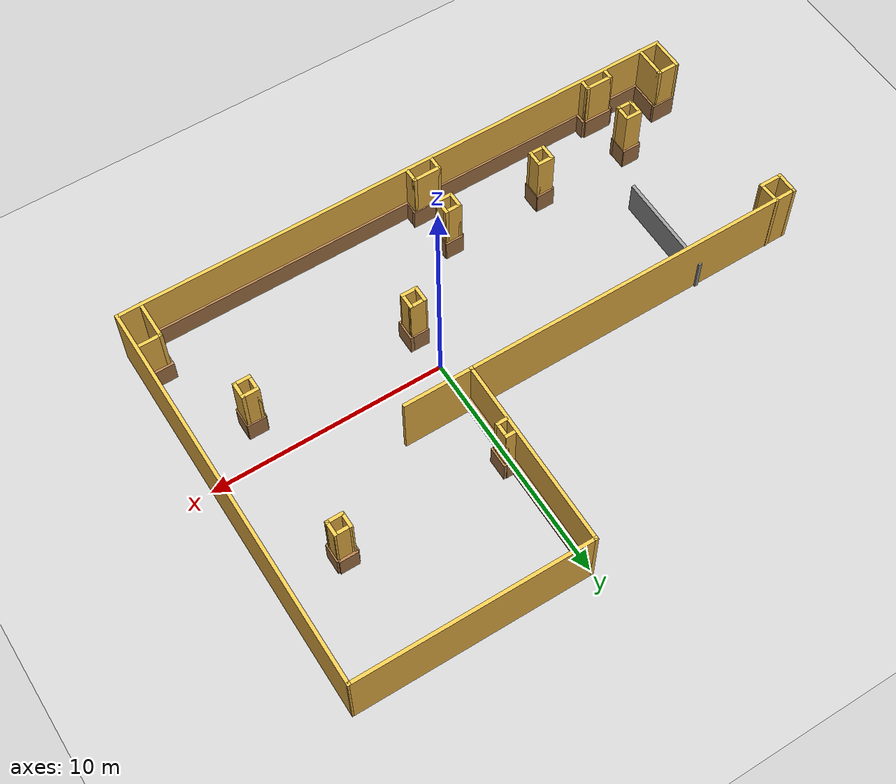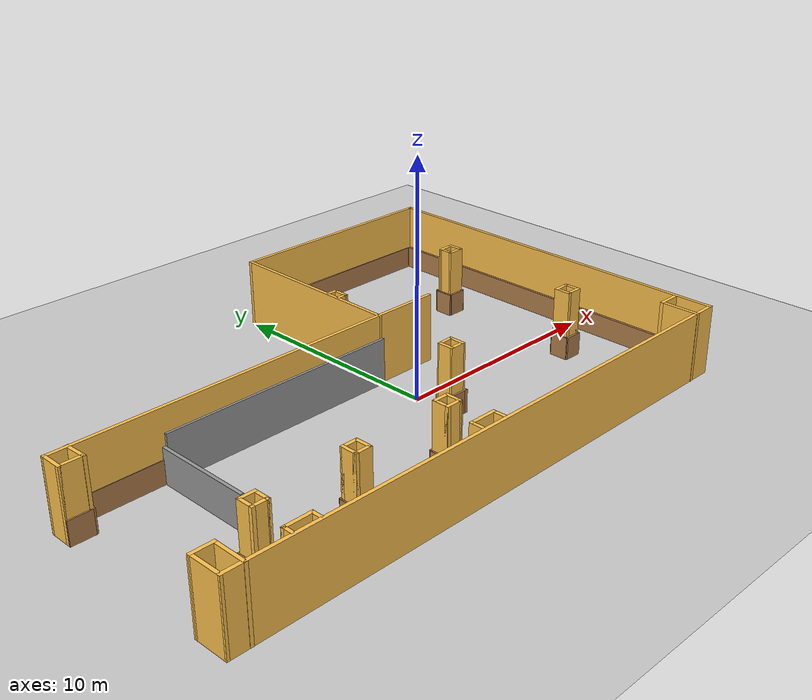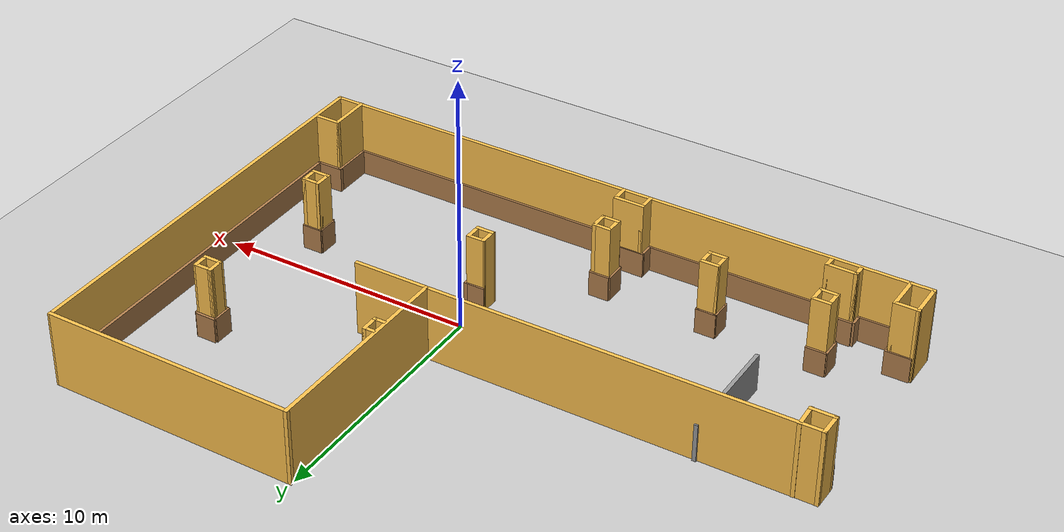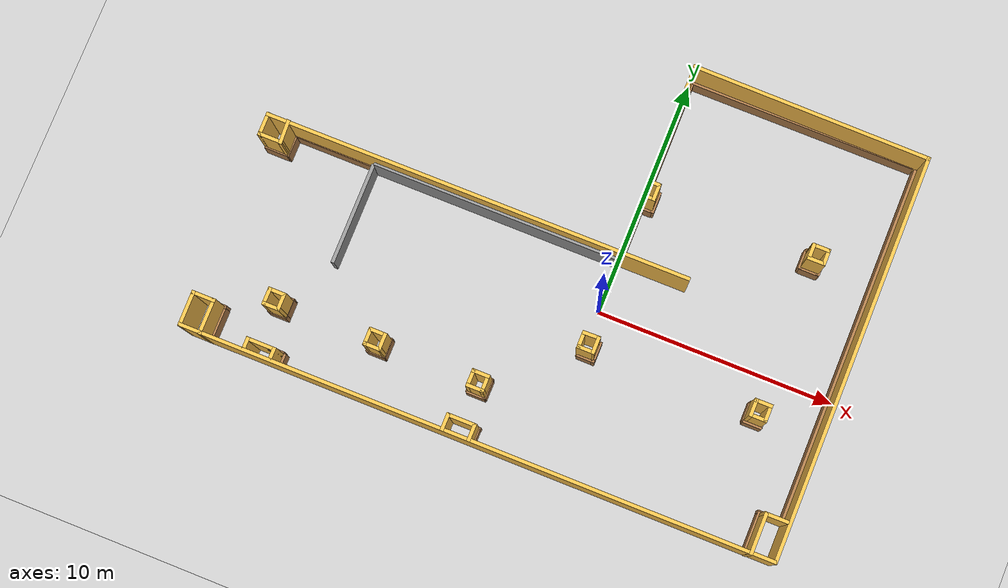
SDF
<sdf version="1.4">
 <world name="default">
  <model name="ground_plane">
   <static>1</static>
   <link name="link">
    <collision name="collision">
     <geometry><plane><normal>0 0 1</normal><size>100 100</size></plane></geometry>
     <surface><friction><ode><mu>100</mu><mu2>50</mu2></ode></friction></surface>
    </collision>
    <visual name="visual">
     <cast_shadows>0</cast_shadows>
     <geometry><plane><normal>0 0 1</normal><size>100 100</size></plane></geometry>
     <material>
      <script><uri>file://media/materials/scripts/gazebo.material</uri><name>Gazebo/Grey</name></script>
     </material>
    </visual>
   </link>
  </model>
  <model name="costa-gv">
   <pose>-2.49048 1.64389 0 0 -0 0</pose>
   <link name="Wall_10">
    <collision name="Wall_10_Collision">
     <geometry><box><size>15 0.15 3</size></box></geometry>
     <pose>0 0 1.5 0 -0 0</pose>
    </collision>
    <visual name="Wall_10_Visual">
     <pose>0 0 1.5 0 -0 0</pose>
     <geometry><box><size>15 0.15 3</size></box></geometry>
     <material>
      <script><uri>file://media/materials/scripts/gazebo.material</uri><name>Gazebo/Grey</name></script>
      <ambient>1 0.764706 0.305882 1</ambient>
     </material>
    </visual>
    <pose>-4.93585 0.471568 0 0 -0 -3.14024</pose>
   </link>
   <link name="Wall_103">
    <collision name="Wall_103_Collision">
     <geometry><box><size>3.4811 0.15 1</size></box></geometry>
     <pose>0 0 0.5 0 -0 0</pose>
    </collision>
    <visual name="Wall_103_Visual">
     <pose>0 0 0.5 0 -0 0</pose>
     <geometry><box><size>3.4811 0.15 1</size></box></geometry>
     <material>
      <script><uri>file://media/materials/scripts/gazebo.material</uri><name>Gazebo/Wood</name></script>
      <ambient>1 1 1 1</ambient>
     </material>
    </visual>
    <pose>-9.76907 0.427453 0 0 -0 3.14152</pose>
   </link>
   <link name="Wall_108">
    <collision name="Wall_108_Collision">
     <geometry><box><size>1 0.15 1</size></box></geometry>
     <pose>0 0 0.5 0 -0 0</pose>
    </collision>
    <visual name="Wall_108_Visual">
     <pose>0 0 0.5 0 -0 0</pose>
     <geometry><box><size>1 0.15 1</size></box></geometry>
     <material>
      <script><uri>file://media/materials/scripts/gazebo.material</uri><name>Gazebo/Wood</name></script>
      <ambient>1 1 1 1</ambient>
     </material>
    </visual>
    <pose>-11.4344 -0.007502 0 0 -0 -1.5708</pose>
   </link>
   <link name="Wall_117">
    <collision name="Wall_117_Collision">
     <geometry><box><size>1 0.15 1</size></box></geometry>
     <pose>0 0 0.5 0 -0 0</pose>
    </collision>
    <visual name="Wall_117_Visual">
     <pose>0 0 0.5 0 -0 0</pose>
     <geometry><box><size>1 0.15 1</size></box></geometry>
     <material>
      <script><uri>file://media/materials/scripts/gazebo.material</uri><name>Gazebo/Wood</name></script>
      <ambient>1 1 1 1</ambient>
     </material>
    </visual>
    <pose>-11.9319 -0.439362 0 0 -0 0</pose>
   </link>
   <link name="Wall_122">
    <collision name="Wall_122_Collision">
     <geometry><box><size>1 0.15 1</size></box></geometry>
     <pose>0 0 0.5 0 -0 0</pose>
    </collision>
    <visual name="Wall_122_Visual">
     <pose>0 0 0.5 0 -0 0</pose>
     <geometry><box><size>1 0.15 1</size></box></geometry>
     <material>
      <script><uri>file://media/materials/scripts/gazebo.material</uri><name>Gazebo/Wood</name></script>
      <ambient>1 1 1 1</ambient>
     </material>
    </visual>
    <pose>-11.8018 -7.05636 0 0 -0 0</pose>
   </link>
   <link name="Wall_124">
    <collision name="Wall_124_Collision">
     <geometry><box><size>1.25 0.15 1</size></box></geometry>
     <pose>0 0 0.5 0 -0 0</pose>
    </collision>
    <visual name="Wall_124_Visual">
     <pose>0 0 0.5 0 -0 0</pose>
     <geometry><box><size>1.25 0.15 1</size></box></geometry>
     <material>
      <script><uri>file://media/materials/scripts/gazebo.material</uri><name>Gazebo/Wood</name></script>
      <ambient>1 1 1 1</ambient>
     </material>
    </visual>
    <pose>-11.3608 -7.72636 0 0 -0 -1.5708</pose>
   </link>
   <link name="Wall_126">
    <collision name="Wall_126_Collision">
     <geometry><box><size>1.75 0.15 1</size></box></geometry>
     <pose>0 0 0.5 0 -0 0</pose>
    </collision>
    <visual name="Wall_126_Visual">
     <pose>0 0 0.5 0 -0 0</pose>
     <geometry><box><size>1.75 0.15 1</size></box></geometry>
     <material>
      <script><uri>file://media/materials/scripts/gazebo.material</uri><name>Gazebo/Wood</name></script>
      <ambient>1 1 1 1</ambient>
     </material>
    </visual>
    <pose>-10.5508 -8.37536 0 0 -0 0</pose>
   </link>
   <link name="Wall_128">
    <collision name="Wall_128_Collision">
     <geometry><box><size>1.25 0.15 1</size></box></geometry>
     <pose>0 0 0.5 0 -0 0</pose>
    </collision>
    <visual name="Wall_128_Visual">
     <pose>0 0 0.5 0 -0 0</pose>
     <geometry><box><size>1.25 0.15 1</size></box></geometry>
     <material>
      <script><uri>file://media/materials/scripts/gazebo.material</uri><name>Gazebo/Wood</name></script>
      <ambient>1 1 1 1</ambient>
     </material>
    </visual>
    <pose>-9.08885 -7.91136 0 0 -0 0</pose>
   </link>
   <link name="Wall_130">
    <collision name="Wall_130_Collision">
     <geometry><box><size>0.5 0.15 1</size></box></geometry>
     <pose>0 0 0.5 0 -0 0</pose>
    </collision>
    <visual name="Wall_130_Visual">
     <pose>0 0 0.5 0 -0 0</pose>
     <geometry><box><size>0.5 0.15 1</size></box></geometry>
     <material>
      <script><uri>file://media/materials/scripts/gazebo.material</uri><name>Gazebo/Wood</name></script>
      <ambient>1 1 1 1</ambient>
     </material>
    </visual>
    <pose>-8.42085 -8.15736 0 0 -0 -1.5708</pose>
   </link>
   <link name="Wall_132">
    <collision name="Wall_132_Collision">
     <geometry><box><size>0.5 0.15 1</size></box></geometry>
     <pose>0 0 0.5 0 -0 0</pose>
    </collision>
    <visual name="Wall_132_Visual">
     <pose>0 0 0.5 0 -0 0</pose>
     <geometry><box><size>0.5 0.15 1</size></box></geometry>
     <material>
      <script><uri>file://media/materials/scripts/gazebo.material</uri><name>Gazebo/Wood</name></script>
      <ambient>1 1 1 1</ambient>
     </material>
    </visual>
    <pose>-9.72985 -8.13736 0 0 -0 -1.5708</pose>
   </link>
   <link name="Wall_134">
    <collision name="Wall_134_Collision">
     <geometry><box><size>7 0.15 1</size></box></geometry>
     <pose>0 0 0.5 0 -0 0</pose>
    </collision>
    <visual name="Wall_134_Visual">
     <pose>0 0 0.5 0 -0 0</pose>
     <geometry><box><size>7 0.15 1</size></box></geometry>
     <material>
      <script><uri>file://media/materials/scripts/gazebo.material</uri><name>Gazebo/Wood</name></script>
      <ambient>1 1 1 1</ambient>
     </material>
    </visual>
    <pose>-4.89485 -8.37536 0 0 -0 0</pose>
   </link>
   <link name="Wall_137">
    <collision name="Wall_137_Collision">
     <geometry><box><size>0.5 0.15 1</size></box></geometry>
     <pose>0 0 0.5 0 -0 0</pose>
    </collision>
    <visual name="Wall_137_Visual">
     <pose>0 0 0.5 0 -0 0</pose>
     <geometry><box><size>0.5 0.15 1</size></box></geometry>
     <material>
      <script><uri>file://media/materials/scripts/gazebo.material</uri><name>Gazebo/Wood</name></script>
      <ambient>1 1 1 1</ambient>
     </material>
    </visual>
    <pose>-1.42185 -8.07636 0 0 -0 -1.5708</pose>
   </link>
   <link name="Wall_141">
    <collision name="Wall_141_Collision">
     <geometry><box><size>0.8 0.15 1</size></box></geometry>
     <pose>0 0 0.5 0 -0 0</pose>
    </collision>
    <visual name="Wall_141_Visual">
     <pose>0 0 0.5 0 -0 0</pose>
     <geometry><box><size>0.8 0.15 1</size></box></geometry>
     <material>
      <script><uri>file://media/materials/scripts/gazebo.material</uri><name>Gazebo/Wood</name></script>
      <ambient>1 1 1 1</ambient>
     </material>
    </visual>
    <pose>-9.29371 -6.54229 0 0 -0 0</pose>
   </link>
   <link name="Wall_146">
    <collision name="Wall_146_Collision">
     <geometry><box><size>0.8 0.15 1</size></box></geometry>
     <pose>0 0 0.5 0 -0 0</pose>
    </collision>
    <visual name="Wall_146_Visual">
     <pose>0 0 0.5 0 -0 0</pose>
     <geometry><box><size>0.8 0.15 1</size></box></geometry>
     <material>
      <script><uri>file://media/materials/scripts/gazebo.material</uri><name>Gazebo/Wood</name></script>
      <ambient>1 1 1 1</ambient>
     </material>
    </visual>
    <pose>-9.30375 -5.81726 0 0 -0 0</pose>
   </link>
   <link name="Wall_148">
    <collision name="Wall_148_Collision">
     <geometry><box><size>0.8 0.15 1</size></box></geometry>
     <pose>0 0 0.5 0 -0 0</pose>
    </collision>
    <visual name="Wall_148_Visual">
     <pose>0 0 0.5 0 -0 0</pose>
     <geometry><box><size>0.8 0.15 1</size></box></geometry>
     <material>
      <script><uri>file://media/materials/scripts/gazebo.material</uri><name>Gazebo/Wood</name></script>
      <ambient>1 1 1 1</ambient>
     </material>
    </visual>
    <pose>-8.9742 -6.19261 0 0 -0 -1.5708</pose>
   </link>
   <link name="Wall_150">
    <collision name="Wall_150_Collision">
     <geometry><box><size>0.8 0.15 1</size></box></geometry>
     <pose>0 0 0.5 0 -0 0</pose>
    </collision>
    <visual name="Wall_150_Visual">
     <pose>0 0 0.5 0 -0 0</pose>
     <geometry><box><size>0.8 0.15 1</size></box></geometry>
     <material>
      <script><uri>file://media/materials/scripts/gazebo.material</uri><name>Gazebo/Wood</name></script>
      <ambient>1 1 1 1</ambient>
     </material>
    </visual>
    <pose>-9.66903 -6.18254 0 0 -0 -1.5708</pose>
   </link>
   <link name="Wall_152">
    <collision name="Wall_152_Collision">
     <geometry><box><size>0.8 0.15 1</size></box></geometry>
     <pose>0 0 0.5 0 -0 0</pose>
    </collision>
    <visual name="Wall_152_Visual">
     <pose>0 0 0.5 0 -0 0</pose>
     <geometry><box><size>0.8 0.15 1</size></box></geometry>
     <material>
      <script><uri>file://media/materials/scripts/gazebo.material</uri><name>Gazebo/Wood</name></script>
      <ambient>1 1 1 1</ambient>
     </material>
    </visual>
    <pose>-5.07028 -6.54841 0 0 -0 0</pose>
   </link>
   <link name="Wall_154">
    <collision name="Wall_154_Collision">
     <geometry><box><size>0.8 0.15 1</size></box></geometry>
     <pose>0 0 0.5 0 -0 0</pose>
    </collision>
    <visual name="Wall_154_Visual">
     <pose>0 0 0.5 0 -0 0</pose>
     <geometry><box><size>0.8 0.15 1</size></box></geometry>
     <material>
      <script><uri>file://media/materials/scripts/gazebo.material</uri><name>Gazebo/Wood</name></script>
      <ambient>1 1 1 1</ambient>
     </material>
    </visual>
    <pose>-5.07028 -5.82927 0 0 -0 0</pose>
   </link>
   <link name="Wall_156">
    <collision name="Wall_156_Collision">
     <geometry><box><size>0.8 0.15 1</size></box></geometry>
     <pose>0 0 0.5 0 -0 0</pose>
    </collision>
    <visual name="Wall_156_Visual">
     <pose>0 0 0.5 0 -0 0</pose>
     <geometry><box><size>0.8 0.15 1</size></box></geometry>
     <material>
      <script><uri>file://media/materials/scripts/gazebo.material</uri><name>Gazebo/Wood</name></script>
      <ambient>1 1 1 1</ambient>
     </material>
    </visual>
    <pose>-4.7294 -6.19422 0 0 -0 -1.5708</pose>
   </link>
   <link name="Wall_158">
    <collision name="Wall_158_Collision">
     <geometry><box><size>0.8 0.15 1</size></box></geometry>
     <pose>0 0 0.5 0 -0 0</pose>
    </collision>
    <visual name="Wall_158_Visual">
     <pose>0 0 0.5 0 -0 0</pose>
     <geometry><box><size>0.8 0.15 1</size></box></geometry>
     <material>
      <script><uri>file://media/materials/scripts/gazebo.material</uri><name>Gazebo/Wood</name></script>
      <ambient>1 1 1 1</ambient>
     </material>
    </visual>
    <pose>-5.42191 -6.19422 0 0 -0 -1.5708</pose>
   </link>
   <link name="Wall_160">
    <collision name="Wall_160_Collision">
     <geometry><box><size>1.4 0.15 1</size></box></geometry>
     <pose>0 0 0.5 0 -0 0</pose>
    </collision>
    <visual name="Wall_160_Visual">
     <pose>0 0 0.5 0 -0 0</pose>
     <geometry><box><size>1.4 0.15 1</size></box></geometry>
     <material>
      <script><uri>file://media/materials/scripts/gazebo.material</uri><name>Gazebo/Wood</name></script>
      <ambient>1 1 1 1</ambient>
     </material>
    </visual>
    <pose>-0.788355 -7.81357 0 0 -0 0</pose>
   </link>
   <link name="Wall_162">
    <collision name="Wall_162_Collision">
     <geometry><box><size>0.7 0.15 1</size></box></geometry>
     <pose>0 0 0.5 0 -0 0</pose>
    </collision>
    <visual name="Wall_162_Visual">
     <pose>0 0 0.5 0 -0 0</pose>
     <geometry><box><size>0.7 0.15 1</size></box></geometry>
     <material>
      <script><uri>file://media/materials/scripts/gazebo.material</uri><name>Gazebo/Wood</name></script>
      <ambient>1 1 1 1</ambient>
     </material>
    </visual>
    <pose>-0.174848 -8.16836 0 0 -0 -1.5708</pose>
   </link>
   <link name="Wall_167">
    <collision name="Wall_167_Collision">
     <geometry><box><size>0.8 0.15 1</size></box></geometry>
     <pose>0 0 0.5 0 -0 0</pose>
    </collision>
    <visual name="Wall_167_Visual">
     <pose>0 0 0.5 0 -0 0</pose>
     <geometry><box><size>0.8 0.15 1</size></box></geometry>
     <material>
      <script><uri>file://media/materials/scripts/gazebo.material</uri><name>Gazebo/Wood</name></script>
      <ambient>1 1 1 1</ambient>
     </material>
    </visual>
    <pose>-1.13366 -6.23417 0 0 -0 -1.5708</pose>
   </link>
   <link name="Wall_169">
    <collision name="Wall_169_Collision">
     <geometry><box><size>0.8 0.15 1</size></box></geometry>
     <pose>0 0 0.5 0 -0 0</pose>
    </collision>
    <visual name="Wall_169_Visual">
     <pose>0 0 0.5 0 -0 0</pose>
     <geometry><box><size>0.8 0.15 1</size></box></geometry>
     <material>
      <script><uri>file://media/materials/scripts/gazebo.material</uri><name>Gazebo/Wood</name></script>
      <ambient>1 1 1 1</ambient>
     </material>
    </visual>
    <pose>-0.414512 -6.23417 0 0 -0 -1.5708</pose>
   </link>
   <link name="Wall_171">
    <collision name="Wall_171_Collision">
     <geometry><box><size>0.8 0.15 1</size></box></geometry>
     <pose>0 0 0.5 0 -0 0</pose>
    </collision>
    <visual name="Wall_171_Visual">
     <pose>0 0 0.5 0 -0 0</pose>
     <geometry><box><size>0.8 0.15 1</size></box></geometry>
     <material>
      <script><uri>file://media/materials/scripts/gazebo.material</uri><name>Gazebo/Wood</name></script>
      <ambient>1 1 1 1</ambient>
     </material>
    </visual>
    <pose>-0.768707 -6.60168 0 0 -0 0</pose>
   </link>
   <link name="Wall_173">
    <collision name="Wall_173_Collision">
     <geometry><box><size>0.8 0.15 1</size></box></geometry>
     <pose>0 0 0.5 0 -0 0</pose>
    </collision>
    <visual name="Wall_173_Visual">
     <pose>0 0 0.5 0 -0 0</pose>
     <geometry><box><size>0.8 0.15 1</size></box></geometry>
     <material>
      <script><uri>file://media/materials/scripts/gazebo.material</uri><name>Gazebo/Wood</name></script>
      <ambient>1 1 1 1</ambient>
     </material>
    </visual>
    <pose>-0.75539 -5.84258 0 0 -0 0</pose>
   </link>
   <link name="Wall_175">
    <collision name="Wall_175_Collision">
     <geometry><box><size>11.5 0.15 1</size></box></geometry>
     <pose>0 0 0.5 0 -0 0</pose>
    </collision>
    <visual name="Wall_175_Visual">
     <pose>0 0 0.5 0 -0 0</pose>
     <geometry><box><size>11.5 0.15 1</size></box></geometry>
     <material>
      <script><uri>file://media/materials/scripts/gazebo.material</uri><name>Gazebo/Wood</name></script>
      <ambient>1 1 1 1</ambient>
     </material>
    </visual>
    <pose>5.58313 -8.36284 0 0 -0 0</pose>
   </link>
   <link name="Wall_177">
    <collision name="Wall_177_Collision">
     <geometry><box><size>1.6 0.15 1</size></box></geometry>
     <pose>0 0 0.5 0 -0 0</pose>
    </collision>
    <visual name="Wall_177_Visual">
     <pose>0 0 0.5 0 -0 0</pose>
     <geometry><box><size>1.6 0.15 1</size></box></geometry>
     <material>
      <script><uri>file://media/materials/scripts/gazebo.material</uri><name>Gazebo/Wood</name></script>
      <ambient>1 1 1 1</ambient>
     </material>
    </visual>
    <pose>11.2848 -7.54313 0 0 -0 -1.5708</pose>
   </link>
   <link name="Wall_179">
    <collision name="Wall_179_Collision">
     <geometry><box><size>1.15 0.15 1</size></box></geometry>
     <pose>0 0 0.5 0 -0 0</pose>
    </collision>
    <visual name="Wall_179_Visual">
     <pose>0 0 0.5 0 -0 0</pose>
     <geometry><box><size>1.15 0.15 1</size></box></geometry>
     <material>
      <script><uri>file://media/materials/scripts/gazebo.material</uri><name>Gazebo/Wood</name></script>
      <ambient>1 1 1 1</ambient>
     </material>
    </visual>
    <pose>11.7805 -6.77121 0 0 -0 3.14159</pose>
   </link>
   <link name="Wall_181">
    <collision name="Wall_181_Collision">
     <geometry><box><size>0.75 0.15 1</size></box></geometry>
     <pose>0 0 0.5 0 -0 0</pose>
    </collision>
    <visual name="Wall_181_Visual">
     <pose>0 0 0.5 0 -0 0</pose>
     <geometry><box><size>0.75 0.15 1</size></box></geometry>
     <material>
      <script><uri>file://media/materials/scripts/gazebo.material</uri><name>Gazebo/Wood</name></script>
      <ambient>1 1 1 1</ambient>
     </material>
    </visual>
    <pose>2.70847 -3.64523 0 0 -0 0</pose>
   </link>
   <link name="Wall_183">
    <collision name="Wall_183_Collision">
     <geometry><box><size>0.9 0.15 1</size></box></geometry>
     <pose>0 0 0.5 0 -0 0</pose>
    </collision>
    <visual name="Wall_183_Visual">
     <pose>0 0 0.5 0 -0 0</pose>
     <geometry><box><size>0.9 0.15 1</size></box></geometry>
     <material>
      <script><uri>file://media/materials/scripts/gazebo.material</uri><name>Gazebo/Wood</name></script>
      <ambient>1 1 1 1</ambient>
     </material>
    </visual>
    <pose>3.03515 -3.27436 0 0 -0 -1.5708</pose>
   </link>
   <link name="Wall_185">
    <collision name="Wall_185_Collision">
     <geometry><box><size>0.75 0.15 1</size></box></geometry>
     <pose>0 0 0.5 0 -0 0</pose>
    </collision>
    <visual name="Wall_185_Visual">
     <pose>0 0 0.5 0 -0 0</pose>
     <geometry><box><size>0.75 0.15 1</size></box></geometry>
     <material>
      <script><uri>file://media/materials/scripts/gazebo.material</uri><name>Gazebo/Wood</name></script>
      <ambient>1 1 1 1</ambient>
     </material>
    </visual>
    <pose>2.65506 -2.89971 0 0 -0 0</pose>
   </link>
   <link name="Wall_187">
    <collision name="Wall_187_Collision">
     <geometry><box><size>0.8 0.15 1</size></box></geometry>
     <pose>0 0 0.5 0 -0 0</pose>
    </collision>
    <visual name="Wall_187_Visual">
     <pose>0 0 0.5 0 -0 0</pose>
     <geometry><box><size>0.8 0.15 1</size></box></geometry>
     <material>
      <script><uri>file://media/materials/scripts/gazebo.material</uri><name>Gazebo/Wood</name></script>
      <ambient>1 1 1 1</ambient>
     </material>
    </visual>
    <pose>10.133 -3.27767 0 0 -0 -1.5708</pose>
   </link>
   <link name="Wall_189">
    <collision name="Wall_189_Collision">
     <geometry><box><size>0.8 0.15 1</size></box></geometry>
     <pose>0 0 0.5 0 -0 0</pose>
    </collision>
    <visual name="Wall_189_Visual">
     <pose>0 0 0.5 0 -0 0</pose>
     <geometry><box><size>0.8 0.15 1</size></box></geometry>
     <material>
      <script><uri>file://media/materials/scripts/gazebo.material</uri><name>Gazebo/Wood</name></script>
      <ambient>1 1 1 1</ambient>
     </material>
    </visual>
    <pose>9.42716 -3.27767 0 0 -0 -1.5708</pose>
   </link>
   <link name="Wall_191">
    <collision name="Wall_191_Collision">
     <geometry><box><size>0.8 0.15 1</size></box></geometry>
     <pose>0 0 0.5 0 -0 0</pose>
    </collision>
    <visual name="Wall_191_Visual">
     <pose>0 0 0.5 0 -0 0</pose>
     <geometry><box><size>0.8 0.15 1</size></box></geometry>
     <material>
      <script><uri>file://media/materials/scripts/gazebo.material</uri><name>Gazebo/Wood</name></script>
      <ambient>1 1 1 1</ambient>
     </material>
    </visual>
    <pose>9.79211 -2.8994 0 0 -0 0</pose>
   </link>
   <link name="Wall_193">
    <collision name="Wall_193_Collision">
     <geometry><box><size>0.8 0.15 1</size></box></geometry>
     <pose>0 0 0.5 0 -0 0</pose>
    </collision>
    <visual name="Wall_193_Visual">
     <pose>0 0 0.5 0 -0 0</pose>
     <geometry><box><size>0.8 0.15 1</size></box></geometry>
     <material>
      <script><uri>file://media/materials/scripts/gazebo.material</uri><name>Gazebo/Wood</name></script>
      <ambient>1 1 1 1</ambient>
     </material>
    </visual>
    <pose>9.79211 -3.6585 0 0 -0 0</pose>
   </link>
   <link name="Wall_195">
    <collision name="Wall_195_Collision">
     <geometry><box><size>2.5 0.15 1</size></box></geometry>
     <pose>0 0 0.5 0 -0 0</pose>
    </collision>
    <visual name="Wall_195_Visual">
     <pose>0 0 0.5 0 -0 0</pose>
     <geometry><box><size>2.5 0.15 1</size></box></geometry>
     <material>
      <script><uri>file://media/materials/scripts/gazebo.material</uri><name>Gazebo/Wood</name></script>
      <ambient>1 1 1 1</ambient>
     </material>
    </visual>
    <pose>2.58315 1.69081 0 0 -0 -1.5708</pose>
   </link>
   <link name="Wall_199">
    <collision name="Wall_199_Collision">
     <geometry><box><size>0.9 0.15 1</size></box></geometry>
     <pose>0 0 0.5 0 -0 0</pose>
    </collision>
    <visual name="Wall_199_Visual">
     <pose>0 0 0.5 0 -0 0</pose>
     <geometry><box><size>0.9 0.15 1</size></box></geometry>
     <material>
      <script><uri>file://media/materials/scripts/gazebo.material</uri><name>Gazebo/Wood</name></script>
      <ambient>1 1 1 1</ambient>
     </material>
    </visual>
    <pose>3.02615 3.21247 0 0 -0 -1.5708</pose>
   </link>
   <link name="Wall_20">
    <collision name="Wall_20_Collision">
     <geometry><box><size>0.75 0.15 3</size></box></geometry>
     <pose>0 0 1.5 0 -0 0</pose>
    </collision>
    <visual name="Wall_20_Visual">
     <pose>0 0 1.5 0 -0 0</pose>
     <geometry><box><size>0.75 0.15 3</size></box></geometry>
     <material>
      <script><uri>file://media/materials/scripts/gazebo.material</uri><name>Gazebo/Grey</name></script>
      <ambient>1 0.764706 0.305882 1</ambient>
     </material>
    </visual>
    <pose>-9.28985 -5.90136 0 0 -0 0</pose>
   </link>
   <link name="Wall_201">
    <collision name="Wall_201_Collision">
     <geometry><box><size>0.5 0.15 1</size></box></geometry>
     <pose>0 0 0.5 0 -0 0</pose>
    </collision>
    <visual name="Wall_201_Visual">
     <pose>0 0 0.5 0 -0 0</pose>
     <geometry><box><size>0.5 0.15 1</size></box></geometry>
     <material>
      <script><uri>file://media/materials/scripts/gazebo.material</uri><name>Gazebo/Wood</name></script>
      <ambient>1 1 1 1</ambient>
     </material>
    </visual>
    <pose>2.75815 2.81964 0 0 -0 3.14159</pose>
   </link>
   <link name="Wall_203">
    <collision name="Wall_203_Collision">
     <geometry><box><size>0.5 0.15 1</size></box></geometry>
     <pose>0 0 0.5 0 -0 0</pose>
    </collision>
    <visual name="Wall_203_Visual">
     <pose>0 0 0.5 0 -0 0</pose>
     <geometry><box><size>0.5 0.15 1</size></box></geometry>
     <material>
      <script><uri>file://media/materials/scripts/gazebo.material</uri><name>Gazebo/Wood</name></script>
      <ambient>1 1 1 1</ambient>
     </material>
    </visual>
    <pose>2.73412 3.61144 0 0 -0 3.14159</pose>
   </link>
   <link name="Wall_205">
    <collision name="Wall_205_Collision">
     <geometry><box><size>4.75 0.15 1</size></box></geometry>
     <pose>0 0 0.5 0 -0 0</pose>
    </collision>
    <visual name="Wall_205_Visual">
     <pose>0 0 0.5 0 -0 0</pose>
     <geometry><box><size>4.75 0.15 1</size></box></geometry>
     <material>
      <script><uri>file://media/materials/scripts/gazebo.material</uri><name>Gazebo/Wood</name></script>
      <ambient>1 1 1 1</ambient>
     </material>
    </visual>
    <pose>2.60715 6.03935 0 0 -0 -1.5708</pose>
   </link>
   <link name="Wall_207">
    <collision name="Wall_207_Collision">
     <geometry><box><size>0.8 0.15 1</size></box></geometry>
     <pose>0 0 0.5 0 -0 0</pose>
    </collision>
    <visual name="Wall_207_Visual">
     <pose>0 0 0.5 0 -0 0</pose>
     <geometry><box><size>0.8 0.15 1</size></box></geometry>
     <material>
      <script><uri>file://media/materials/scripts/gazebo.material</uri><name>Gazebo/Wood</name></script>
      <ambient>1 1 1 1</ambient>
     </material>
    </visual>
    <pose>9.6862 3.63471 0 0 -0 0</pose>
   </link>
   <link name="Wall_209">
    <collision name="Wall_209_Collision">
     <geometry><box><size>0.8 0.15 1</size></box></geometry>
     <pose>0 0 0.5 0 -0 0</pose>
    </collision>
    <visual name="Wall_209_Visual">
     <pose>0 0 0.5 0 -0 0</pose>
     <geometry><box><size>0.8 0.15 1</size></box></geometry>
     <material>
      <script><uri>file://media/materials/scripts/gazebo.material</uri><name>Gazebo/Wood</name></script>
      <ambient>1 1 1 1</ambient>
     </material>
    </visual>
    <pose>9.70978 2.88914 0 0 -0 0</pose>
   </link>
   <link name="Wall_21">
    <collision name="Wall_21_Collision">
     <geometry><box><size>0.75 0.15 3</size></box></geometry>
     <pose>0 0 1.5 0 -0 0</pose>
    </collision>
    <visual name="Wall_21_Visual">
     <pose>0 0 1.5 0 -0 0</pose>
     <geometry><box><size>0.75 0.15 3</size></box></geometry>
     <material>
      <script><uri>file://media/materials/scripts/gazebo.material</uri><name>Gazebo/Grey</name></script>
      <ambient>1 0.764706 0.305882 1</ambient>
     </material>
    </visual>
    <pose>-8.98985 -6.20136 0 0 -0 -1.5708</pose>
   </link>
   <link name="Wall_211">
    <collision name="Wall_211_Collision">
     <geometry><box><size>0.8 0.15 1</size></box></geometry>
     <pose>0 0 0.5 0 -0 0</pose>
    </collision>
    <visual name="Wall_211_Visual">
     <pose>0 0 0.5 0 -0 0</pose>
     <geometry><box><size>0.8 0.15 1</size></box></geometry>
     <material>
      <script><uri>file://media/materials/scripts/gazebo.material</uri><name>Gazebo/Wood</name></script>
      <ambient>1 1 1 1</ambient>
     </material>
    </visual>
    <pose>10.0836 3.23963 0 0 -0 -1.5708</pose>
   </link>
   <link name="Wall_213">
    <collision name="Wall_213_Collision">
     <geometry><box><size>0.8 0.15 1</size></box></geometry>
     <pose>0 0 0.5 0 -0 0</pose>
    </collision>
    <visual name="Wall_213_Visual">
     <pose>0 0 0.5 0 -0 0</pose>
     <geometry><box><size>0.8 0.15 1</size></box></geometry>
     <material>
      <script><uri>file://media/materials/scripts/gazebo.material</uri><name>Gazebo/Wood</name></script>
      <ambient>1 1 1 1</ambient>
     </material>
    </visual>
    <pose>9.31515 3.23964 0 0 -0 -1.5708</pose>
   </link>
   <link name="Wall_215">
    <collision name="Wall_215_Collision">
     <geometry><box><size>9.5 0.15 1</size></box></geometry>
     <pose>0 0 0.5 0 -0 0</pose>
    </collision>
    <visual name="Wall_215_Visual">
     <pose>0 0 0.5 0 -0 0</pose>
     <geometry><box><size>9.5 0.15 1</size></box></geometry>
     <material>
      <script><uri>file://media/materials/scripts/gazebo.material</uri><name>Gazebo/Wood</name></script>
      <ambient>1 1 1 1</ambient>
     </material>
    </visual>
    <pose>7.37515 8.36264 0 0 -0 0</pose>
   </link>
   <link name="Wall_217">
    <collision name="Wall_217_Collision">
     <geometry><box><size>15.25 0.15 1</size></box></geometry>
     <pose>0 0 0.5 0 -0 0</pose>
    </collision>
    <visual name="Wall_217_Visual">
     <pose>0 0 0.5 0 -0 0</pose>
     <geometry><box><size>15.25 0.15 1</size></box></geometry>
     <material>
      <script><uri>file://media/materials/scripts/gazebo.material</uri><name>Gazebo/Wood</name></script>
      <ambient>1 1 1 1</ambient>
     </material>
    </visual>
    <pose>12.2443 0.762065 0 0 -0 -1.5708</pose>
   </link>
   <link name="Wall_219">
    <collision name="Wall_219_Collision">
     <geometry><box><size>10.5 0.15 2</size></box></geometry>
     <pose>0 0 1 0 -0 0</pose>
    </collision>
    <visual name="Wall_219_Visual">
     <pose>0 0 1 0 -0 0</pose>
     <geometry><box><size>10.5 0.15 2</size></box></geometry>
     <material>
      <script><uri>file://media/materials/scripts/gazebo.material</uri><name>Gazebo/Grey</name></script>
      <ambient>1 1 1 1</ambient>
     </material>
    </visual>
    <pose>-2.66326 0.365931 0 0 -0 3.14159</pose>
   </link>
   <link name="Wall_22">
    <collision name="Wall_22_Collision">
     <geometry><box><size>0.75 0.15 3</size></box></geometry>
     <pose>0 0 1.5 0 -0 0</pose>
    </collision>
    <visual name="Wall_22_Visual">
     <pose>0 0 1.5 0 -0 0</pose>
     <geometry><box><size>0.75 0.15 3</size></box></geometry>
     <material>
      <script><uri>file://media/materials/scripts/gazebo.material</uri><name>Gazebo/Grey</name></script>
      <ambient>1 0.764706 0.305882 1</ambient>
     </material>
    </visual>
    <pose>-9.28985 -6.50136 0 0 -0 3.14159</pose>
   </link>
   <link name="Wall_23">
    <collision name="Wall_23_Collision">
     <geometry><box><size>0.75 0.15 3</size></box></geometry>
     <pose>0 0 1.5 0 -0 0</pose>
    </collision>
    <visual name="Wall_23_Visual">
     <pose>0 0 1.5 0 -0 0</pose>
     <geometry><box><size>0.75 0.15 3</size></box></geometry>
     <material>
      <script><uri>file://media/materials/scripts/gazebo.material</uri><name>Gazebo/Grey</name></script>
      <ambient>1 0.764706 0.305882 1</ambient>
     </material>
    </visual>
    <pose>-9.58985 -6.20136 0 0 -0 1.5708</pose>
   </link>
   <link name="Wall_25">
    <collision name="Wall_25_Collision">
     <geometry><box><size>0.75 0.15 3</size></box></geometry>
     <pose>0 0 1.5 0 -0 0</pose>
    </collision>
    <visual name="Wall_25_Visual">
     <pose>0 0 1.5 0 -0 0</pose>
     <geometry><box><size>0.75 0.15 3</size></box></geometry>
     <material>
      <script><uri>file://media/materials/scripts/gazebo.material</uri><name>Gazebo/Grey</name></script>
      <ambient>1 0.764706 0.305882 1</ambient>
     </material>
    </visual>
    <pose>-5.05985 -5.90136 0 0 -0 0</pose>
   </link>
   <link name="Wall_26">
    <collision name="Wall_26_Collision">
     <geometry><box><size>0.75 0.15 3</size></box></geometry>
     <pose>0 0 1.5 0 -0 0</pose>
    </collision>
    <visual name="Wall_26_Visual">
     <pose>0 0 1.5 0 -0 0</pose>
     <geometry><box><size>0.75 0.15 3</size></box></geometry>
     <material>
      <script><uri>file://media/materials/scripts/gazebo.material</uri><name>Gazebo/Grey</name></script>
      <ambient>1 0.764706 0.305882 1</ambient>
     </material>
    </visual>
    <pose>-4.75985 -6.20136 0 0 -0 -1.5708</pose>
   </link>
   <link name="Wall_29">
    <collision name="Wall_29_Collision">
     <geometry><box><size>0.75 0.15 3</size></box></geometry>
     <pose>0 0 1.5 0 -0 0</pose>
    </collision>
    <visual name="Wall_29_Visual">
     <pose>0 0 1.5 0 -0 0</pose>
     <geometry><box><size>0.75 0.15 3</size></box></geometry>
     <material>
      <script><uri>file://media/materials/scripts/gazebo.material</uri><name>Gazebo/Grey</name></script>
      <ambient>1 0.764706 0.305882 1</ambient>
     </material>
    </visual>
    <pose>-5.35985 -6.20136 0 0 -0 -1.5708</pose>
   </link>
   <link name="Wall_30">
    <collision name="Wall_30_Collision">
     <geometry><box><size>0.75 0.15 3</size></box></geometry>
     <pose>0 0 1.5 0 -0 0</pose>
    </collision>
    <visual name="Wall_30_Visual">
     <pose>0 0 1.5 0 -0 0</pose>
     <geometry><box><size>0.75 0.15 3</size></box></geometry>
     <material>
      <script><uri>file://media/materials/scripts/gazebo.material</uri><name>Gazebo/Grey</name></script>
      <ambient>1 0.764706 0.305882 1</ambient>
     </material>
    </visual>
    <pose>-5.05985 -6.50136 0 0 -0 0</pose>
   </link>
   <link name="Wall_32">
    <collision name="Wall_32_Collision">
     <geometry><box><size>0.75 0.15 3</size></box></geometry>
     <pose>0 0 1.5 0 -0 0</pose>
    </collision>
    <visual name="Wall_32_Visual">
     <pose>0 0 1.5 0 -0 0</pose>
     <geometry><box><size>0.75 0.15 3</size></box></geometry>
     <material>
      <script><uri>file://media/materials/scripts/gazebo.material</uri><name>Gazebo/Grey</name></script>
      <ambient>1 0.764706 0.305882 1</ambient>
     </material>
    </visual>
    <pose>-0.759848 -5.92136 0 0 -0 0</pose>
   </link>
   <link name="Wall_33">
    <collision name="Wall_33_Collision">
     <geometry><box><size>0.75 0.15 3</size></box></geometry>
     <pose>0 0 1.5 0 -0 0</pose>
    </collision>
    <visual name="Wall_33_Visual">
     <pose>0 0 1.5 0 -0 0</pose>
     <geometry><box><size>0.75 0.15 3</size></box></geometry>
     <material>
      <script><uri>file://media/materials/scripts/gazebo.material</uri><name>Gazebo/Grey</name></script>
      <ambient>1 0.764706 0.305882 1</ambient>
     </material>
    </visual>
    <pose>-0.459848 -6.22136 0 0 -0 -1.5708</pose>
   </link>
   <link name="Wall_34">
    <collision name="Wall_34_Collision">
     <geometry><box><size>0.75 0.15 3</size></box></geometry>
     <pose>0 0 1.5 0 -0 0</pose>
    </collision>
    <visual name="Wall_34_Visual">
     <pose>0 0 1.5 0 -0 0</pose>
     <geometry><box><size>0.75 0.15 3</size></box></geometry>
     <material>
      <script><uri>file://media/materials/scripts/gazebo.material</uri><name>Gazebo/Grey</name></script>
      <ambient>1 0.764706 0.305882 1</ambient>
     </material>
    </visual>
    <pose>-0.759848 -6.52136 0 0 -0 3.14159</pose>
   </link>
   <link name="Wall_35">
    <collision name="Wall_35_Collision">
     <geometry><box><size>0.75 0.15 3</size></box></geometry>
     <pose>0 0 1.5 0 -0 0</pose>
    </collision>
    <visual name="Wall_35_Visual">
     <pose>0 0 1.5 0 -0 0</pose>
     <geometry><box><size>0.75 0.15 3</size></box></geometry>
     <material>
      <script><uri>file://media/materials/scripts/gazebo.material</uri><name>Gazebo/Grey</name></script>
      <ambient>1 0.764706 0.305882 1</ambient>
     </material>
    </visual>
    <pose>-1.05985 -6.22136 0 0 -0 1.5708</pose>
   </link>
   <link name="Wall_37">
    <collision name="Wall_37_Collision">
     <geometry><box><size>0.751 0.15 3</size></box></geometry>
     <pose>0 0 1.5 0 -0 0</pose>
    </collision>
    <visual name="Wall_37_Visual">
     <pose>0 0 1.5 0 -0 0</pose>
     <geometry><box><size>0.751 0.15 3</size></box></geometry>
     <material>
      <script><uri>file://media/materials/scripts/gazebo.material</uri><name>Gazebo/Grey</name></script>
      <ambient>1 0.764706 0.305882 1</ambient>
     </material>
    </visual>
    <pose>2.6549 -2.96586 0 0 -0 0.028256</pose>
   </link>
   <link name="Wall_38">
    <collision name="Wall_38_Collision">
     <geometry><box><size>0.73251 0.15 3</size></box></geometry>
     <pose>0 0 1.5 0 -0 0</pose>
    </collision>
    <visual name="Wall_38_Visual">
     <pose>0 0 1.5 0 -0 0</pose>
     <geometry><box><size>0.73251 0.15 3</size></box></geometry>
     <material>
      <script><uri>file://media/materials/scripts/gazebo.material</uri><name>Gazebo/Grey</name></script>
      <ambient>1 0.764706 0.305882 1</ambient>
     </material>
    </visual>
    <pose>2.9554 -3.26611 0 0 -0 -1.57164</pose>
   </link>
   <link name="Wall_39">
    <collision name="Wall_39_Collision">
     <geometry><box><size>0.75 0.15 3</size></box></geometry>
     <pose>0 0 1.5 0 -0 0</pose>
    </collision>
    <visual name="Wall_39_Visual">
     <pose>0 0 1.5 0 -0 0</pose>
     <geometry><box><size>0.75 0.15 3</size></box></geometry>
     <material>
      <script><uri>file://media/materials/scripts/gazebo.material</uri><name>Gazebo/Grey</name></script>
      <ambient>1 0.764706 0.305882 1</ambient>
     </material>
    </visual>
    <pose>2.65515 -3.55736 0 0 -0 3.14159</pose>
   </link>
   <link name="Wall_40">
    <collision name="Wall_40_Collision">
     <geometry><box><size>0.73251 0.15 3</size></box></geometry>
     <pose>0 0 1.5 0 -0 0</pose>
    </collision>
    <visual name="Wall_40_Visual">
     <pose>0 0 1.5 0 -0 0</pose>
     <geometry><box><size>0.73251 0.15 3</size></box></geometry>
     <material>
      <script><uri>file://media/materials/scripts/gazebo.material</uri><name>Gazebo/Grey</name></script>
      <ambient>1 0.764706 0.305882 1</ambient>
     </material>
    </visual>
    <pose>2.35465 -3.26586 0 0 -0 1.57251</pose>
   </link>
   <link name="Wall_42">
    <collision name="Wall_42_Collision">
     <geometry><box><size>0.75 0.15 3</size></box></geometry>
     <pose>0 0 1.5 0 -0 0</pose>
    </collision>
    <visual name="Wall_42_Visual">
     <pose>0 0 1.5 0 -0 0</pose>
     <geometry><box><size>0.75 0.15 3</size></box></geometry>
     <material>
      <script><uri>file://media/materials/scripts/gazebo.material</uri><name>Gazebo/Grey</name></script>
      <ambient>1 0.764706 0.305882 1</ambient>
     </material>
    </visual>
    <pose>9.77815 -2.95836 0 0 -0 0</pose>
   </link>
   <link name="Wall_43">
    <collision name="Wall_43_Collision">
     <geometry><box><size>0.75 0.15 3</size></box></geometry>
     <pose>0 0 1.5 0 -0 0</pose>
    </collision>
    <visual name="Wall_43_Visual">
     <pose>0 0 1.5 0 -0 0</pose>
     <geometry><box><size>0.75 0.15 3</size></box></geometry>
     <material>
      <script><uri>file://media/materials/scripts/gazebo.material</uri><name>Gazebo/Grey</name></script>
      <ambient>1 0.764706 0.305882 1</ambient>
     </material>
    </visual>
    <pose>10.0782 -3.25836 0 0 -0 -1.5708</pose>
   </link>
   <link name="Wall_44">
    <collision name="Wall_44_Collision">
     <geometry><box><size>0.749866 0.15 3</size></box></geometry>
     <pose>0 0 1.5 0 -0 0</pose>
    </collision>
    <visual name="Wall_44_Visual">
     <pose>0 0 1.5 0 -0 0</pose>
     <geometry><box><size>0.749866 0.15 3</size></box></geometry>
     <material>
      <script><uri>file://media/materials/scripts/gazebo.material</uri><name>Gazebo/Grey</name></script>
      <ambient>1 0.764706 0.305882 1</ambient>
     </material>
    </visual>
    <pose>9.77815 -3.55836 0 0 -0 3.14159</pose>
   </link>
   <link name="Wall_45">
    <collision name="Wall_45_Collision">
     <geometry><box><size>0.75 0.15 3</size></box></geometry>
     <pose>0 0 1.5 0 -0 0</pose>
    </collision>
    <visual name="Wall_45_Visual">
     <pose>0 0 1.5 0 -0 0</pose>
     <geometry><box><size>0.75 0.15 3</size></box></geometry>
     <material>
      <script><uri>file://media/materials/scripts/gazebo.material</uri><name>Gazebo/Grey</name></script>
      <ambient>1 0.764706 0.305882 1</ambient>
     </material>
    </visual>
    <pose>9.47815 -3.25836 0 0 -0 1.5708</pose>
   </link>
   <link name="Wall_47">
    <collision name="Wall_47_Collision">
     <geometry><box><size>0.5 0.15 3</size></box></geometry>
     <pose>0 0 1.5 0 -0 0</pose>
    </collision>
    <visual name="Wall_47_Visual">
     <pose>0 0 1.5 0 -0 0</pose>
     <geometry><box><size>0.5 0.15 3</size></box></geometry>
     <material>
      <script><uri>file://media/materials/scripts/gazebo.material</uri><name>Gazebo/Grey</name></script>
      <ambient>1 0.764706 0.305882 1</ambient>
     </material>
    </visual>
    <pose>2.77015 3.51064 0 0 -0 0</pose>
   </link>
   <link name="Wall_48">
    <collision name="Wall_48_Collision">
     <geometry><box><size>0.75 0.15 3</size></box></geometry>
     <pose>0 0 1.5 0 -0 0</pose>
    </collision>
    <visual name="Wall_48_Visual">
     <pose>0 0 1.5 0 -0 0</pose>
     <geometry><box><size>0.75 0.15 3</size></box></geometry>
     <material>
      <script><uri>file://media/materials/scripts/gazebo.material</uri><name>Gazebo/Grey</name></script>
      <ambient>1 0.764706 0.305882 1</ambient>
     </material>
    </visual>
    <pose>2.94515 3.21064 0 0 -0 -1.5708</pose>
   </link>
   <link name="Wall_49">
    <collision name="Wall_49_Collision">
     <geometry><box><size>0.5 0.15 3</size></box></geometry>
     <pose>0 0 1.5 0 -0 0</pose>
    </collision>
    <visual name="Wall_49_Visual">
     <pose>0 0 1.5 0 -0 0</pose>
     <geometry><box><size>0.5 0.15 3</size></box></geometry>
     <material>
      <script><uri>file://media/materials/scripts/gazebo.material</uri><name>Gazebo/Grey</name></script>
      <ambient>1 0.764706 0.305882 1</ambient>
     </material>
    </visual>
    <pose>2.77015 2.91064 0 0 -0 3.14159</pose>
   </link>
   <link name="Wall_52">
    <collision name="Wall_52_Collision">
     <geometry><box><size>1.75 0.15 3</size></box></geometry>
     <pose>0 0 1.5 0 -0 0</pose>
    </collision>
    <visual name="Wall_52_Visual">
     <pose>0 0 1.5 0 -0 0</pose>
     <geometry><box><size>1.75 0.15 3</size></box></geometry>
     <material>
      <script><uri>file://media/materials/scripts/gazebo.material</uri><name>Gazebo/Grey</name></script>
      <ambient>1 0.764706 0.305882 1</ambient>
     </material>
    </visual>
    <pose>11.3762 -7.67136 0 0 -0 -1.5708</pose>
   </link>
   <link name="Wall_54">
    <collision name="Wall_54_Collision">
     <geometry><box><size>1 0.15 3</size></box></geometry>
     <pose>0 0 1.5 0 -0 0</pose>
    </collision>
    <visual name="Wall_54_Visual">
     <pose>0 0 1.5 0 -0 0</pose>
     <geometry><box><size>1 0.15 3</size></box></geometry>
     <material>
      <script><uri>file://media/materials/scripts/gazebo.material</uri><name>Gazebo/Grey</name></script>
      <ambient>1 0.764706 0.305882 1</ambient>
     </material>
    </visual>
    <pose>11.8012 -6.87136 0 0 -0 0</pose>
   </link>
   <link name="Wall_60">
    <collision name="Wall_60_Collision">
     <geometry><box><size>24.796 0.15 3</size></box></geometry>
     <pose>0 0 1.5 0 -0 0</pose>
    </collision>
    <visual name="Wall_60_Visual">
     <pose>0 0 1.5 0 -0 0</pose>
     <geometry><box><size>24.796 0.15 3</size></box></geometry>
     <material>
      <script><uri>file://media/materials/scripts/gazebo.material</uri><name>Gazebo/Grey</name></script>
      <ambient>1 0.764706 0.305882 1</ambient>
     </material>
    </visual>
    <pose>0.037152 -8.45936 0 0 -0 3.14159</pose>
   </link>
   <link name="Wall_62">
    <collision name="Wall_62_Collision">
     <geometry><box><size>1.49162 0.15 3</size></box></geometry>
     <pose>0 0 1.5 0 -0 0</pose>
    </collision>
    <visual name="Wall_62_Visual">
     <pose>0 0 1.5 0 -0 0</pose>
     <geometry><box><size>1.49162 0.15 3</size></box></geometry>
     <material>
      <script><uri>file://media/materials/scripts/gazebo.material</uri><name>Gazebo/Grey</name></script>
      <ambient>1 0.764706 0.305882 1</ambient>
     </material>
    </visual>
    <pose>-12.2913 -7.78886 0 0 -0 -1.56259</pose>
   </link>
   <link name="Wall_64">
    <collision name="Wall_64_Collision">
     <geometry><box><size>1 0.15 3</size></box></geometry>
     <pose>0 0 1.5 0 -0 0</pose>
    </collision>
    <visual name="Wall_64_Visual">
     <pose>0 0 1.5 0 -0 0</pose>
     <geometry><box><size>1 0.15 3</size></box></geometry>
     <material>
      <script><uri>file://media/materials/scripts/gazebo.material</uri><name>Gazebo/Grey</name></script>
      <ambient>1 0.764706 0.305882 1</ambient>
     </material>
    </visual>
    <pose>-11.8718 -7.11836 0 0 -0 0</pose>
   </link>
   <link name="Wall_65">
    <collision name="Wall_65_Collision">
     <geometry><box><size>1.5 0.15 3</size></box></geometry>
     <pose>0 0 1.5 0 -0 0</pose>
    </collision>
    <visual name="Wall_65_Visual">
     <pose>0 0 1.5 0 -0 0</pose>
     <geometry><box><size>1.5 0.15 3</size></box></geometry>
     <material>
      <script><uri>file://media/materials/scripts/gazebo.material</uri><name>Gazebo/Grey</name></script>
      <ambient>1 0.764706 0.305882 1</ambient>
     </material>
    </visual>
    <pose>-11.4468 -7.79336 0 0 -0 -1.5708</pose>
   </link>
   <link name="Wall_67">
    <collision name="Wall_67_Collision">
     <geometry><box><size>0.5 0.15 3</size></box></geometry>
     <pose>0 0 1.5 0 -0 0</pose>
    </collision>
    <visual name="Wall_67_Visual">
     <pose>0 0 1.5 0 -0 0</pose>
     <geometry><box><size>0.5 0.15 3</size></box></geometry>
     <material>
      <script><uri>file://media/materials/scripts/gazebo.material</uri><name>Gazebo/Grey</name></script>
      <ambient>1 0.764706 0.305882 1</ambient>
     </material>
    </visual>
    <pose>-9.62785 -8.17636 0 0 -0 1.5708</pose>
   </link>
   <link name="Wall_69">
    <collision name="Wall_69_Collision">
     <geometry><box><size>0.15 0.15 2.5</size></box></geometry>
     <pose>0 0 1.25 0 -0 0</pose>
    </collision>
    <visual name="Wall_69_Visual">
     <pose>0 0 1.25 0 -0 0</pose>
     <geometry><box><size>0.15 0.15 2.5</size></box></geometry>
     <material>
      <script><uri>file://media/materials/scripts/gazebo.material</uri><name>Gazebo/Grey</name></script>
      <ambient>1 1 1 1</ambient>
     </material>
    </visual>
    <pose>-8.77792 -8.00156 0 0 -0 0</pose>
   </link>
   <link name="Wall_70">
    <collision name="Wall_70_Collision">
     <geometry><box><size>0.15 0.15 2.5</size></box></geometry>
     <pose>0 0 1.25 0 -0 0</pose>
    </collision>
    <visual name="Wall_70_Visual">
     <pose>0 0 1.25 0 -0 0</pose>
     <geometry><box><size>0.15 0.15 2.5</size></box></geometry>
     <material>
      <script><uri>file://media/materials/scripts/gazebo.material</uri><name>Gazebo/Grey</name></script>
      <ambient>1 1 1 1</ambient>
     </material>
    </visual>
    <pose>-8.77792 -8.00156 0 0 -0 0</pose>
   </link>
   <link name="Wall_71">
    <collision name="Wall_71_Collision">
     <geometry><box><size>0.15 0.15 2.5</size></box></geometry>
     <pose>0 0 1.25 0 -0 0</pose>
    </collision>
    <visual name="Wall_71_Visual">
     <pose>0 0 1.25 0 -0 0</pose>
     <geometry><box><size>0.15 0.15 2.5</size></box></geometry>
     <material>
      <script><uri>file://media/materials/scripts/gazebo.material</uri><name>Gazebo/Grey</name></script>
      <ambient>1 1 1 1</ambient>
     </material>
    </visual>
    <pose>-8.77792 -8.00156 0 0 -0 0</pose>
   </link>
   <link name="Wall_73">
    <collision name="Wall_73_Collision">
     <geometry><box><size>1.25 0.15 3</size></box></geometry>
     <pose>0 0 1.5 0 -0 0</pose>
    </collision>
    <visual name="Wall_73_Visual">
     <pose>0 0 1.5 0 -0 0</pose>
     <geometry><box><size>1.25 0.15 3</size></box></geometry>
     <material>
      <script><uri>file://media/materials/scripts/gazebo.material</uri><name>Gazebo/Grey</name></script>
      <ambient>1 0.764706 0.305882 1</ambient>
     </material>
    </visual>
    <pose>-9.07785 -8.00136 0 0 -0 0</pose>
   </link>
   <link name="Wall_74">
    <collision name="Wall_74_Collision">
     <geometry><box><size>0.5 0.15 3</size></box></geometry>
     <pose>0 0 1.5 0 -0 0</pose>
    </collision>
    <visual name="Wall_74_Visual">
     <pose>0 0 1.5 0 -0 0</pose>
     <geometry><box><size>0.5 0.15 3</size></box></geometry>
     <material>
      <script><uri>file://media/materials/scripts/gazebo.material</uri><name>Gazebo/Grey</name></script>
      <ambient>1 0.764706 0.305882 1</ambient>
     </material>
    </visual>
    <pose>-8.52785 -8.17636 0 0 -0 -1.5708</pose>
   </link>
   <link name="Wall_76">
    <collision name="Wall_76_Collision">
     <geometry><box><size>0.75 0.15 3</size></box></geometry>
     <pose>0 0 1.5 0 -0 0</pose>
    </collision>
    <visual name="Wall_76_Visual">
     <pose>0 0 1.5 0 -0 0</pose>
     <geometry><box><size>0.75 0.15 3</size></box></geometry>
     <material>
      <script><uri>file://media/materials/scripts/gazebo.material</uri><name>Gazebo/Grey</name></script>
      <ambient>1 0.764706 0.305882 1</ambient>
     </material>
    </visual>
    <pose>-1.33185 -8.15836 0 0 -0 1.5708</pose>
   </link>
   <link name="Wall_77">
    <collision name="Wall_77_Collision">
     <geometry><box><size>1.25 0.15 3</size></box></geometry>
     <pose>0 0 1.5 0 -0 0</pose>
    </collision>
    <visual name="Wall_77_Visual">
     <pose>0 0 1.5 0 -0 0</pose>
     <geometry><box><size>1.25 0.15 3</size></box></geometry>
     <material>
      <script><uri>file://media/materials/scripts/gazebo.material</uri><name>Gazebo/Grey</name></script>
      <ambient>1 0.764706 0.305882 1</ambient>
     </material>
    </visual>
    <pose>-0.781848 -7.85836 0 0 -0 0</pose>
   </link>
   <link name="Wall_78">
    <collision name="Wall_78_Collision">
     <geometry><box><size>0.75 0.15 3</size></box></geometry>
     <pose>0 0 1.5 0 -0 0</pose>
    </collision>
    <visual name="Wall_78_Visual">
     <pose>0 0 1.5 0 -0 0</pose>
     <geometry><box><size>0.75 0.15 3</size></box></geometry>
     <material>
      <script><uri>file://media/materials/scripts/gazebo.material</uri><name>Gazebo/Grey</name></script>
      <ambient>1 0.764706 0.305882 1</ambient>
     </material>
    </visual>
    <pose>-0.231848 -8.15836 0 0 -0 -1.5708</pose>
   </link>
   <link name="Wall_80">
    <collision name="Wall_80_Collision">
     <geometry><box><size>17 0.15 3</size></box></geometry>
     <pose>0 0 1.5 0 -0 0</pose>
    </collision>
    <visual name="Wall_80_Visual">
     <pose>0 0 1.5 0 -0 0</pose>
     <geometry><box><size>17 0.15 3</size></box></geometry>
     <material>
      <script><uri>file://media/materials/scripts/gazebo.material</uri><name>Gazebo/Grey</name></script>
      <ambient>1 0.764706 0.305882 1</ambient>
     </material>
    </visual>
    <pose>12.3602 -0.034362 0 0 -0 1.5708</pose>
   </link>
   <link name="Wall_81">
    <collision name="Wall_81_Collision">
     <geometry><box><size>9.97469 0.15 3</size></box></geometry>
     <pose>0 0 1.5 0 -0 0</pose>
    </collision>
    <visual name="Wall_81_Visual">
     <pose>0 0 1.5 0 -0 0</pose>
     <geometry><box><size>9.97469 0.15 3</size></box></geometry>
     <material>
      <script><uri>file://media/materials/scripts/gazebo.material</uri><name>Gazebo/Grey</name></script>
      <ambient>1 0.764706 0.305882 1</ambient>
     </material>
    </visual>
    <pose>7.44815 8.43064 0 0 -0 3.13345</pose>
   </link>
   <link name="Wall_83">
    <collision name="Wall_83_Collision">
     <geometry><box><size>0.767 0.15 3</size></box></geometry>
     <pose>0 0 1.5 0 -0 0</pose>
    </collision>
    <visual name="Wall_83_Visual">
     <pose>0 0 1.5 0 -0 0</pose>
     <geometry><box><size>0.767 0.15 3</size></box></geometry>
     <material>
      <script><uri>file://media/materials/scripts/gazebo.material</uri><name>Gazebo/Grey</name></script>
      <ambient>1 0.764706 0.305882 1</ambient>
     </material>
    </visual>
    <pose>9.70765 3.52564 0 0 -0 0</pose>
   </link>
   <link name="Wall_84">
    <collision name="Wall_84_Collision">
     <geometry><box><size>0.680042 0.15 3</size></box></geometry>
     <pose>0 0 1.5 0 -0 0</pose>
    </collision>
    <visual name="Wall_84_Visual">
     <pose>0 0 1.5 0 -0 0</pose>
     <geometry><box><size>0.680042 0.15 3</size></box></geometry>
     <material>
      <script><uri>file://media/materials/scripts/gazebo.material</uri><name>Gazebo/Grey</name></script>
      <ambient>1 0.764706 0.305882 1</ambient>
     </material>
    </visual>
    <pose>10.0169 3.26062 0 0 -0 -1.56798</pose>
   </link>
   <link name="Wall_85">
    <collision name="Wall_85_Collision">
     <geometry><box><size>0.768 0.15 3</size></box></geometry>
     <pose>0 0 1.5 0 -0 0</pose>
    </collision>
    <visual name="Wall_85_Visual">
     <pose>0 0 1.5 0 -0 0</pose>
     <geometry><box><size>0.768 0.15 3</size></box></geometry>
     <material>
      <script><uri>file://media/materials/scripts/gazebo.material</uri><name>Gazebo/Grey</name></script>
      <ambient>1 0.764706 0.305882 1</ambient>
     </material>
    </visual>
    <pose>9.70864 2.97811 0 0 -0 3.14159</pose>
   </link>
   <link name="Wall_86">
    <collision name="Wall_86_Collision">
     <geometry><box><size>0.68004 0.15 3</size></box></geometry>
     <pose>0 0 1.5 0 -0 0</pose>
    </collision>
    <visual name="Wall_86_Visual">
     <pose>0 0 1.5 0 -0 0</pose>
     <geometry><box><size>0.68004 0.15 3</size></box></geometry>
     <material>
      <script><uri>file://media/materials/scripts/gazebo.material</uri><name>Gazebo/Grey</name></script>
      <ambient>1 0.764706 0.305882 1</ambient>
     </material>
    </visual>
    <pose>9.3994 3.26062 0 0 -0 1.57172</pose>
   </link>
   <link name="Wall_88">
    <collision name="Wall_88_Collision">
     <geometry><box><size>1 0.15 3</size></box></geometry>
     <pose>0 0 1.5 0 -0 0</pose>
    </collision>
    <visual name="Wall_88_Visual">
     <pose>0 0 1.5 0 -0 0</pose>
     <geometry><box><size>1 0.15 3</size></box></geometry>
     <material>
      <script><uri>file://media/materials/scripts/gazebo.material</uri><name>Gazebo/Grey</name></script>
      <ambient>1 0.764706 0.305882 1</ambient>
     </material>
    </visual>
    <pose>-12.3608 0.046568 0 0 -0 -1.5708</pose>
   </link>
   <link name="Wall_89">
    <collision name="Wall_89_Collision">
     <geometry><box><size>1.04028 0.15 3</size></box></geometry>
     <pose>0 0 1.5 0 -0 0</pose>
    </collision>
    <visual name="Wall_89_Visual">
     <pose>0 0 1.5 0 -0 0</pose>
     <geometry><box><size>1.04028 0.15 3</size></box></geometry>
     <material>
      <script><uri>file://media/materials/scripts/gazebo.material</uri><name>Gazebo/Grey</name></script>
      <ambient>1 0.764706 0.305882 1</ambient>
     </material>
    </visual>
    <pose>-11.9157 -0.378432 0 0 -0 0</pose>
   </link>
   <link name="Wall_9">
    <collision name="Wall_9_Collision">
     <geometry><box><size>8.13971 0.15 3</size></box></geometry>
     <pose>0 0 1.5 0 -0 0</pose>
    </collision>
    <visual name="Wall_9_Visual">
     <pose>0 0 1.5 0 -0 0</pose>
     <geometry><box><size>8.13971 0.15 3</size></box></geometry>
     <material>
      <script><uri>file://media/materials/scripts/gazebo.material</uri><name>Gazebo/Grey</name></script>
      <ambient>1 0.764706 0.305882 1</ambient>
     </material>
    </visual>
    <pose>2.51265 4.47614 0 0 -0 -1.57668</pose>
   </link>
   <link name="Wall_90">
    <collision name="Wall_90_Collision">
     <geometry><box><size>1.02107 0.15 3</size></box></geometry>
     <pose>0 0 1.5 0 -0 0</pose>
    </collision>
    <visual name="Wall_90_Visual">
     <pose>0 0 1.5 0 -0 0</pose>
     <geometry><box><size>1.02107 0.15 3</size></box></geometry>
     <material>
      <script><uri>file://media/materials/scripts/gazebo.material</uri><name>Gazebo/Grey</name></script>
      <ambient>1 0.764706 0.305882 1</ambient>
     </material>
    </visual>
    <pose>-11.4907 0.046568 0 0 -0 1.61705</pose>
   </link>
   <link name="Wall_94">
    <collision name="Wall_94_Collision">
     <geometry><box><size>4.5 0.15 1.5</size></box></geometry>
     <pose>0 0 0.75 0 -0 0</pose>
    </collision>
    <visual name="Wall_94_Visual">
     <pose>0 0 0.75 0 -0 0</pose>
     <geometry><box><size>4.5 0.15 1.5</size></box></geometry>
     <material>
      <script><uri>file://media/materials/scripts/gazebo.material</uri><name>Gazebo/Grey</name></script>
      <ambient>0 0 0 1</ambient>
     </material>
    </visual>
    <pose>-7.99085 -1.63536 0 0 -0 -1.5708</pose>
   </link>
   <link name="Wall_98">
    <collision name="Wall_98_Collision">
     <geometry><box><size>3 0.15 3</size></box></geometry>
     <pose>0 0 1.5 0 -0 0</pose>
    </collision>
    <visual name="Wall_98_Visual">
     <pose>0 0 1.5 0 -0 0</pose>
     <geometry><box><size>3 0.15 3</size></box></geometry>
     <material>
      <script><uri>file://media/materials/scripts/gazebo.material</uri><name>Gazebo/Grey</name></script>
      <ambient>1 0.764706 0.305882 1</ambient>
     </material>
    </visual>
    <pose>3.91415 0.481638 0 0 -0 0</pose>
   </link>
   <static>1</static>
  </model>
 </world>
</sdf>
